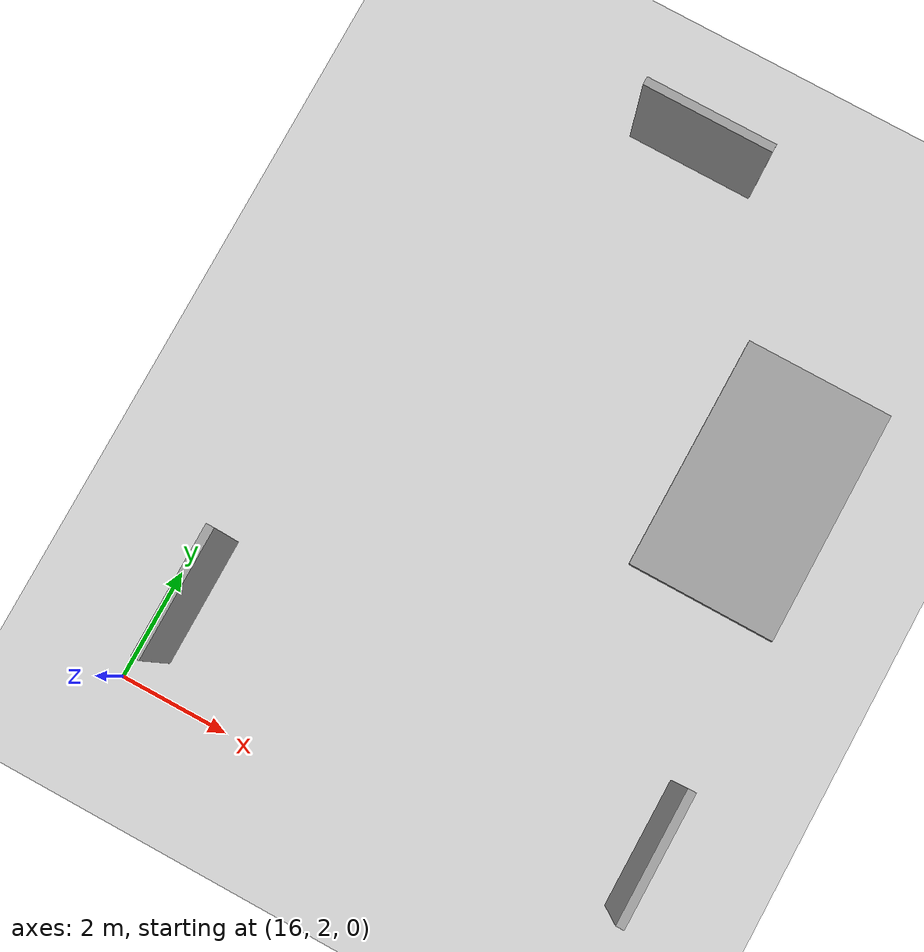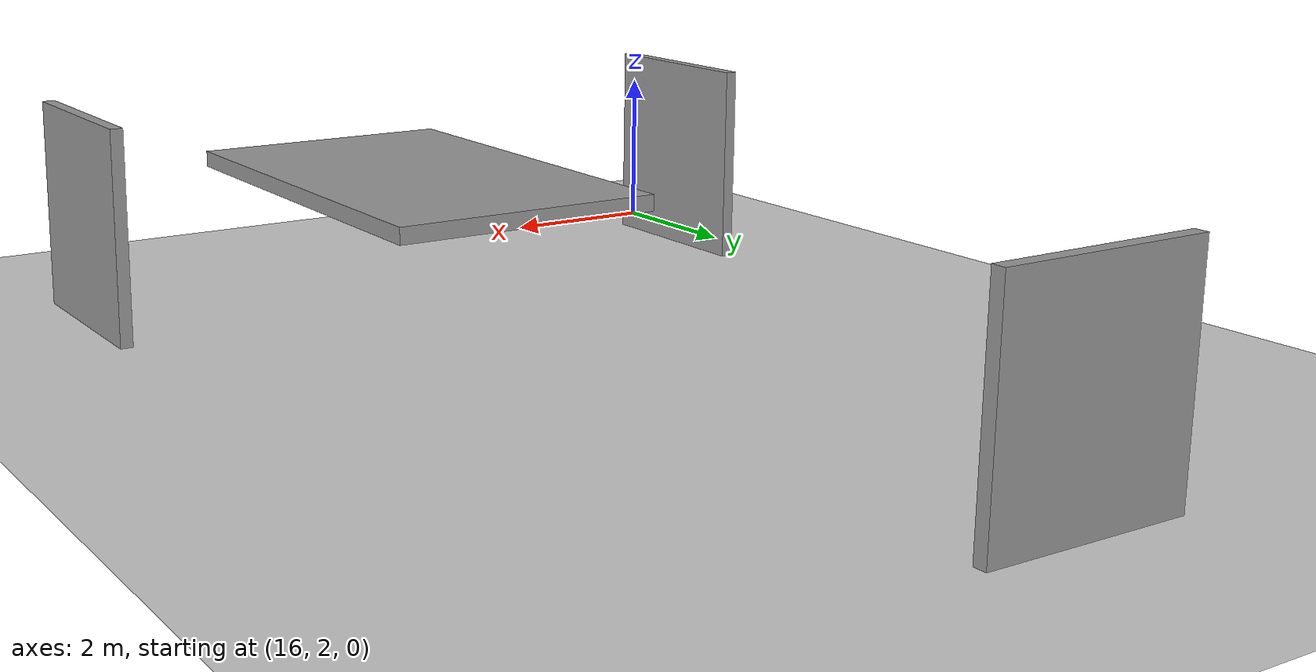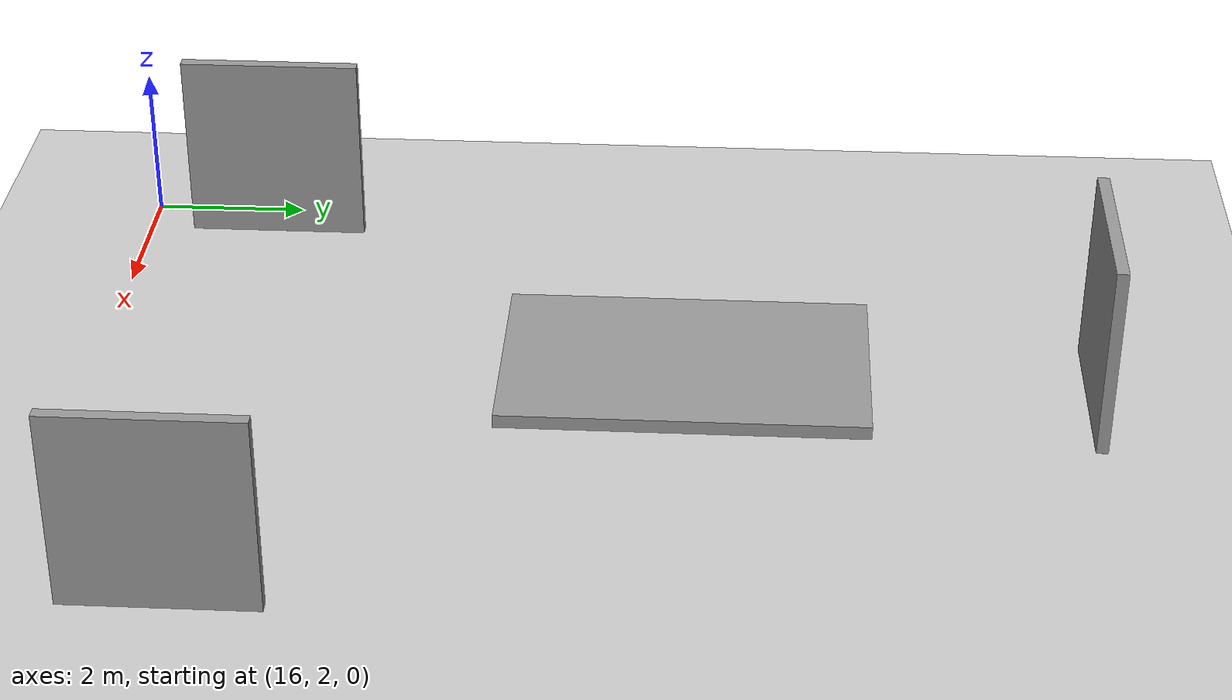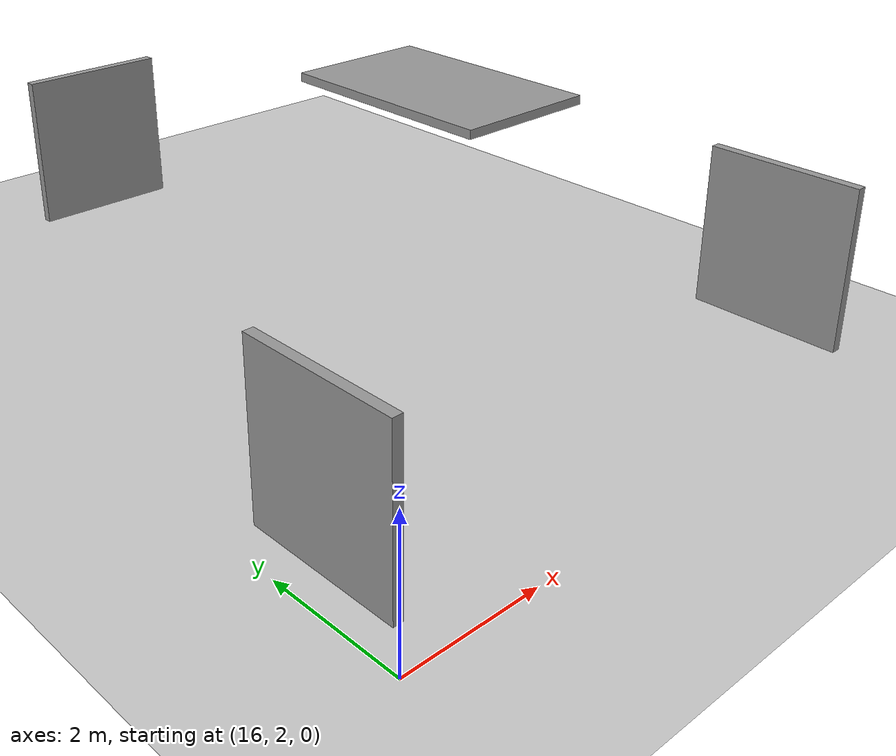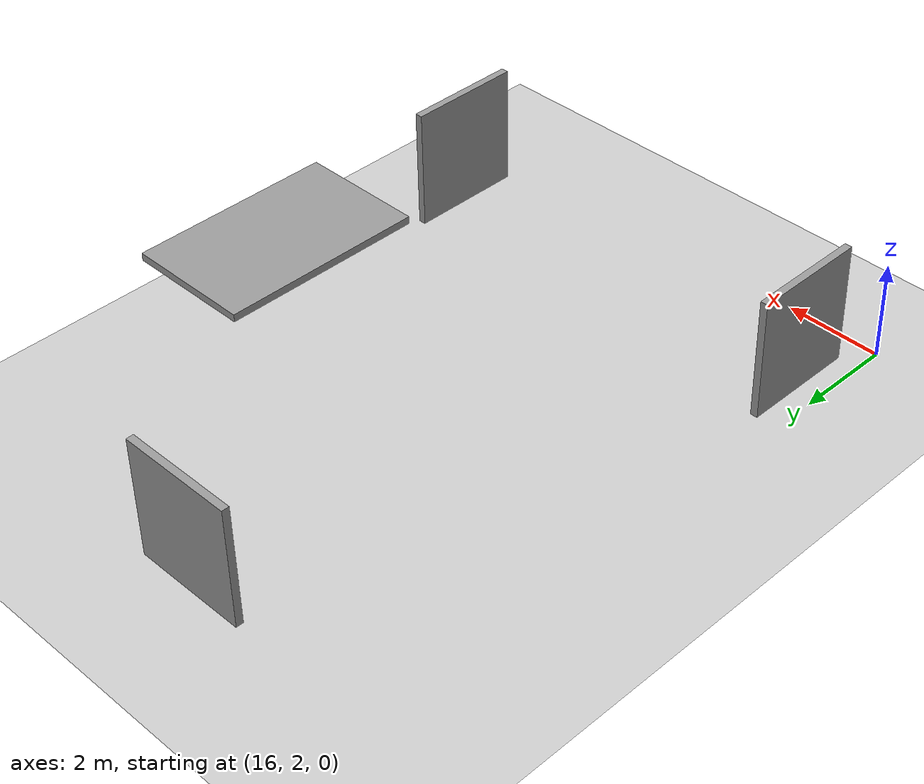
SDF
<sdf version="1.6">
 <world name="default">
  <model name="ground_plane">
   <pose>15 45 0 0 -0 0</pose>
   <static>1</static>
   <link name="link">
    <collision name="collision">
     <geometry><plane><normal>0 0 1</normal><size>100 100</size></plane></geometry>
     <surface><friction><ode><mu>100</mu><mu2>50</mu2></ode></friction></surface>
    </collision>
    <visual name="visual">
     <cast_shadows>0</cast_shadows>
     <geometry><plane><normal>0 0 1</normal><size>30 120</size></plane></geometry>
     <material>
      <script><uri>file://media/materials/scripts/gazebo.material</uri><name>Gazebo/Grey</name></script>
     </material>
    </visual>
   </link>
  </model>
  <model name="barrier">
   <link name="link_0">
    <inertial>
     <mass>1</mass>
     <inertia>
      <ixx>0.166667</ixx>
      <ixy>0</ixy>
      <ixz>0</ixz>
      <iyy>0.166667</iyy>
      <iyz>0</iyz>
      <izz>0.166667</izz>
     </inertia>
    </inertial>
    <pose>1e-06 1e-06 0 0 -0 0</pose>
    <visual name="visual">
     <pose>0 0 0.75 0 -0 0</pose>
     <geometry><box><size>2.35 0.15 2.5</size></box></geometry>
     <material>
      <lighting>1</lighting>
      <script><uri>file://media/materials/scripts/gazebo.material</uri><name>Gazebo/Grey</name></script>
      <shader type="pixel"><normal_map>__default__</normal_map></shader>
      <ambient>0.3 0.3 0.3 1</ambient>
      <diffuse>0.7 0.7 0.7 1</diffuse>
      <specular>0.01 0.01 0.01 1</specular>
      <emissive>0 0 0 1</emissive>
     </material>
    </visual>
    <collision name="collision">
     <pose>0 0 0.75 0 -0 0</pose>
     <geometry><box><size>2.35 0.15 2.5</size></box></geometry>
     <surface>
      <friction>
       <ode><mu>1</mu><mu2>1</mu2><fdir1>0 0 0</fdir1><slip1>0</slip1><slip2>0</slip2></ode>
       <torsional>
        <coefficient>1</coefficient>
        <patch_radius>0</patch_radius>
        <surface_radius>0</surface_radius>
        <use_patch_radius>1</use_patch_radius>
        <ode><slip>0</slip></ode>
       </torsional>
      </friction>
      <bounce><restitution_coefficient>0</restitution_coefficient><threshold>1e+06</threshold></bounce>
      <contact>
       <collide_without_contact>0</collide_without_contact>
       <collide_without_contact_bitmask>1</collide_without_contact_bitmask>
       <collide_bitmask>1</collide_bitmask>
       <ode>
        <soft_cfm>0</soft_cfm>
        <soft_erp>0.2</soft_erp>
        <kp>1e+13</kp>
        <kd>1</kd>
        <max_vel>0.01</max_vel>
        <min_depth>0</min_depth>
       </ode>
       <bullet>
        <split_impulse>1</split_impulse>
        <split_impulse_penetration_threshold>-0.01</split_impulse_penetration_threshold>
        <soft_cfm>0</soft_cfm>
        <soft_erp>0.2</soft_erp>
        <kp>1e+13</kp>
        <kd>1</kd>
       </bullet>
      </contact>
     </surface>
    </collision>
   </link>
   <static>0</static>
   <pose>25.0026 3.74203 0.499988 1e-06 -1.1e-05 1.56993</pose>
  </model>
  <model name="barrier_clone">
   <link name="link_0">
    <inertial>
     <mass>1</mass>
     <inertia>
      <ixx>0.166667</ixx>
      <ixy>0</ixy>
      <ixz>0</ixz>
      <iyy>0.166667</iyy>
      <iyz>0</iyz>
      <izz>0.166667</izz>
     </inertia>
    </inertial>
    <pose>1e-06 1e-06 0 0 -0 0</pose>
    <visual name="visual">
     <pose>0 0 0.75 0 -0 0</pose>
     <geometry><box><size>2.35 0.15 2.5</size></box></geometry>
     <material>
      <lighting>1</lighting>
      <script><uri>file://media/materials/scripts/gazebo.material</uri><name>Gazebo/Grey</name></script>
      <shader type="pixel"><normal_map>__default__</normal_map></shader>
      <ambient>0.3 0.3 0.3 1</ambient>
      <diffuse>0.7 0.7 0.7 1</diffuse>
      <specular>0.01 0.01 0.01 1</specular>
      <emissive>0 0 0 1</emissive>
     </material>
    </visual>
    <collision name="collision">
     <pose>0 0 0.75 0 -0 0</pose>
     <geometry><box><size>2.35 0.15 2.5</size></box></geometry>
     <surface>
      <friction>
       <ode><mu>1</mu><mu2>1</mu2><fdir1>0 0 0</fdir1><slip1>0</slip1><slip2>0</slip2></ode>
       <torsional>
        <coefficient>1</coefficient>
        <patch_radius>0</patch_radius>
        <surface_radius>0</surface_radius>
        <use_patch_radius>1</use_patch_radius>
        <ode><slip>0</slip></ode>
       </torsional>
      </friction>
      <bounce><restitution_coefficient>0</restitution_coefficient><threshold>1e+06</threshold></bounce>
      <contact>
       <collide_without_contact>0</collide_without_contact>
       <collide_without_contact_bitmask>1</collide_without_contact_bitmask>
       <collide_bitmask>1</collide_bitmask>
       <ode>
        <soft_cfm>0</soft_cfm>
        <soft_erp>0.2</soft_erp>
        <kp>1e+13</kp>
        <kd>1</kd>
        <max_vel>0.01</max_vel>
        <min_depth>0</min_depth>
       </ode>
       <bullet>
        <split_impulse>1</split_impulse>
        <split_impulse_penetration_threshold>-0.01</split_impulse_penetration_threshold>
        <soft_cfm>0</soft_cfm>
        <soft_erp>0.2</soft_erp>
        <kp>1e+13</kp>
        <kd>1</kd>
       </bullet>
      </contact>
     </surface>
    </collision>
   </link>
   <static>0</static>
   <pose>16.5105 3.74884 0.503105 -0.002049 1.8e-05 1.5711</pose>
  </model>
  <model name="barrier_0">
   <link name="link_0">
    <inertial>
     <mass>1</mass>
     <inertia>
      <ixx>0.166667</ixx>
      <ixy>0</ixy>
      <ixz>0</ixz>
      <iyy>0.166667</iyy>
      <iyz>0</iyz>
      <izz>0.166667</izz>
     </inertia>
    </inertial>
    <pose>1e-06 1e-06 0 0 -0 0</pose>
    <visual name="visual">
     <pose>0 0 0.75 0 -0 0</pose>
     <geometry><box><size>2.35 0.15 2.5</size></box></geometry>
     <material>
      <lighting>1</lighting>
      <script><uri>file://media/materials/scripts/gazebo.material</uri><name>Gazebo/Grey</name></script>
      <shader type="pixel"><normal_map>__default__</normal_map></shader>
      <ambient>0.3 0.3 0.3 1</ambient>
      <diffuse>0.7 0.7 0.7 1</diffuse>
      <specular>0.01 0.01 0.01 1</specular>
      <emissive>0 0 0 1</emissive>
     </material>
    </visual>
    <collision name="collision">
     <pose>0 0 0.75 0 -0 0</pose>
     <geometry><box><size>2.35 0.15 2.5</size></box></geometry>
     <surface>
      <friction>
       <ode><mu>1</mu><mu2>1</mu2><fdir1>0 0 0</fdir1><slip1>0</slip1><slip2>0</slip2></ode>
       <torsional>
        <coefficient>1</coefficient>
        <patch_radius>0</patch_radius>
        <surface_radius>0</surface_radius>
        <use_patch_radius>1</use_patch_radius>
        <ode><slip>0</slip></ode>
       </torsional>
      </friction>
      <bounce><restitution_coefficient>0</restitution_coefficient><threshold>1e+06</threshold></bounce>
      <contact>
       <collide_without_contact>0</collide_without_contact>
       <collide_without_contact_bitmask>1</collide_without_contact_bitmask>
       <collide_bitmask>1</collide_bitmask>
       <ode>
        <soft_cfm>0</soft_cfm>
        <soft_erp>0.2</soft_erp>
        <kp>1e+13</kp>
        <kd>1</kd>
        <max_vel>0.01</max_vel>
        <min_depth>0</min_depth>
       </ode>
       <bullet>
        <split_impulse>1</split_impulse>
        <split_impulse_penetration_threshold>-0.01</split_impulse_penetration_threshold>
        <soft_cfm>0</soft_cfm>
        <soft_erp>0.2</soft_erp>
        <kp>1e+13</kp>
        <kd>1</kd>
       </bullet>
      </contact>
     </surface>
    </collision>
   </link>
   <static>0</static>
   <pose>20.2496 14.4984 0.500373 -0.005079 -1e-06 -0.000799</pose>
  </model>
  <model name="proof_clone_1_clone">
   <link name="link_0">
    <inertial>
     <mass>1</mass>
     <inertia>
      <ixx>0.166667</ixx>
      <ixy>0</ixy>
      <ixz>0</ixz>
      <iyy>0.166667</iyy>
      <iyz>0</iyz>
      <izz>0.166667</izz>
     </inertia>
    </inertial>
    <pose>-0 -1e-06 0 0 -0 0</pose>
    <visual name="visual">
     <pose>0 0 2 0 -0 0</pose>
     <geometry><box><size>4 2.5 0.15</size></box></geometry>
     <material>
      <lighting>1</lighting>
      <script><uri>file://media/materials/scripts/gazebo.material</uri><name>Gazebo/Grey</name></script>
      <shader type="pixel"><normal_map>__default__</normal_map></shader>
      <ambient>0.3 0.3 0.3 1</ambient>
      <diffuse>0.7 0.7 0.7 1</diffuse>
      <specular>0.01 0.01 0.01 1</specular>
      <emissive>0 0 0 1</emissive>
     </material>
    </visual>
    <collision name="collision">
     <pose>0 0 2 0 -0 0</pose>
     <geometry><box><size>4 2.5 0.15</size></box></geometry>
     <surface>
      <friction>
       <ode><mu>1</mu><mu2>1</mu2><fdir1>0 0 0</fdir1><slip1>0</slip1><slip2>0</slip2></ode>
       <torsional>
        <coefficient>1</coefficient>
        <patch_radius>0</patch_radius>
        <surface_radius>0</surface_radius>
        <use_patch_radius>1</use_patch_radius>
        <ode><slip>0</slip></ode>
       </torsional>
      </friction>
      <bounce><restitution_coefficient>0</restitution_coefficient><threshold>1e+06</threshold></bounce>
      <contact>
       <collide_without_contact>0</collide_without_contact>
       <collide_without_contact_bitmask>1</collide_without_contact_bitmask>
       <collide_bitmask>1</collide_bitmask>
       <ode>
        <soft_cfm>0</soft_cfm>
        <soft_erp>0.2</soft_erp>
        <kp>1e+13</kp>
        <kd>1</kd>
        <max_vel>0.01</max_vel>
        <min_depth>0</min_depth>
       </ode>
       <bullet>
        <split_impulse>1</split_impulse>
        <split_impulse_penetration_threshold>-0.01</split_impulse_penetration_threshold>
        <soft_cfm>0</soft_cfm>
        <soft_erp>0.2</soft_erp>
        <kp>1e+13</kp>
        <kd>1</kd>
       </bullet>
      </contact>
     </surface>
    </collision>
   </link>
   <static>0</static>
   <pose>23.7605 9.50567 0.575 -0 1e-06 1.56946</pose>
  </model>
 </world>
</sdf>
